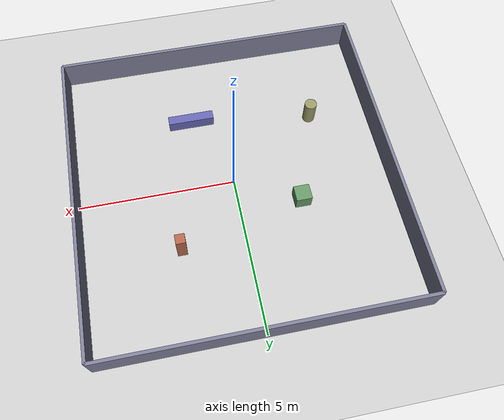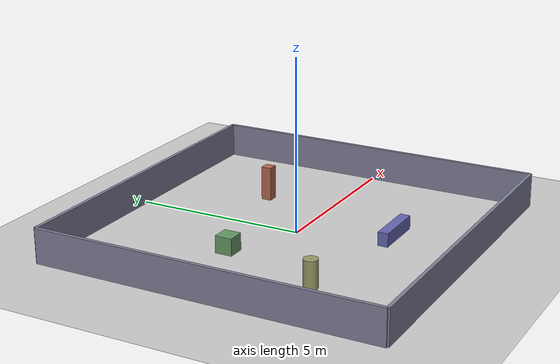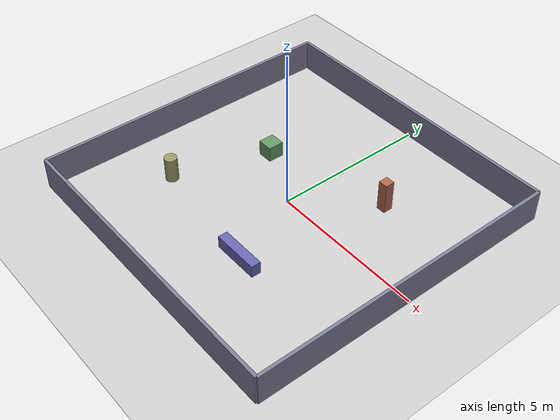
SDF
<?xml version="1.0" ?>
<sdf version="1.10">
  <world name="havoc_sim">
    <physics name="1ms" type="ignored">
      <max_step_size>0.001</max_step_size>
      <real_time_factor>1.0</real_time_factor>
    </physics>

    <plugin filename="gz-sim-physics-system" name="gz::sim::systems::Physics"/>
    <plugin filename="gz-sim-user-commands-system" name="gz::sim::systems::UserCommands"/>
    <plugin filename="gz-sim-scene-broadcaster-system" name="gz::sim::systems::SceneBroadcaster"/>
    <plugin filename="gz-sim-contact-system" name="gz::sim::systems::Contact"/>

    <!-- Sensor systems - the missing piece from empty.sdf. -->
    <plugin filename="gz-sim-sensors-system" name="gz::sim::systems::Sensors">
      <render_engine>ogre2</render_engine>
    </plugin>
    <plugin filename="gz-sim-imu-system" name="gz::sim::systems::Imu"/>

    <light type="directional" name="sun">
      <cast_shadows>true</cast_shadows>
      <pose>0 0 10 0 0 0</pose>
      <diffuse>0.8 0.8 0.8 1</diffuse>
      <specular>0.2 0.2 0.2 1</specular>
      <attenuation>
        <range>1000</range>
        <constant>0.9</constant>
        <linear>0.01</linear>
        <quadratic>0.001</quadratic>
      </attenuation>
      <direction>-0.5 0.1 -0.9</direction>
    </light>

    <model name="ground_plane">
      <static>true</static>
      <link name="link">
        <collision name="collision">
          <geometry>
            <plane>
              <normal>0 0 1</normal>
              <size>100 100</size>
            </plane>
          </geometry>
        </collision>
        <visual name="visual">
          <geometry>
            <plane>
              <normal>0 0 1</normal>
              <size>100 100</size>
            </plane>
          </geometry>
          <material>
            <ambient>0.7 0.7 0.7 1</ambient>
            <diffuse>0.8 0.8 0.8 1</diffuse>
            <specular>0.5 0.5 0.5 1</specular>
          </material>
        </visual>
      </link>
    </model>

    <model name="wall_north">
      <static>true</static>
      <pose>0 5 0.5 0 0 0</pose>
      <link name="link">
        <collision name="collision">
          <geometry><box><size>10 0.1 1</size></box></geometry>
        </collision>
        <visual name="visual">
          <geometry><box><size>10 0.1 1</size></box></geometry>
          <material>
            <ambient>0.4 0.4 0.5 1</ambient>
            <diffuse>0.5 0.5 0.6 1</diffuse>
          </material>
        </visual>
      </link>
    </model>
    <model name="wall_south">
      <static>true</static>
      <pose>0 -5 0.5 0 0 0</pose>
      <link name="link">
        <collision name="collision">
          <geometry><box><size>10 0.1 1</size></box></geometry>
        </collision>
        <visual name="visual">
          <geometry><box><size>10 0.1 1</size></box></geometry>
          <material>
            <ambient>0.4 0.4 0.5 1</ambient>
            <diffuse>0.5 0.5 0.6 1</diffuse>
          </material>
        </visual>
      </link>
    </model>
    <model name="wall_east">
      <static>true</static>
      <pose>5 0 0.5 0 0 0</pose>
      <link name="link">
        <collision name="collision">
          <geometry><box><size>0.1 10 1</size></box></geometry>
        </collision>
        <visual name="visual">
          <geometry><box><size>0.1 10 1</size></box></geometry>
          <material>
            <ambient>0.4 0.4 0.5 1</ambient>
            <diffuse>0.5 0.5 0.6 1</diffuse>
          </material>
        </visual>
      </link>
    </model>
    <model name="wall_west">
      <static>true</static>
      <pose>-5 0 0.5 0 0 0</pose>
      <link name="link">
        <collision name="collision">
          <geometry><box><size>0.1 10 1</size></box></geometry>
        </collision>
        <visual name="visual">
          <geometry><box><size>0.1 10 1</size></box></geometry>
          <material>
            <ambient>0.4 0.4 0.5 1</ambient>
            <diffuse>0.5 0.5 0.6 1</diffuse>
          </material>
        </visual>
      </link>
    </model>

    <model name="pillar_a">
      <static>true</static>
      <pose>2.0 2.0 0.5 0 0 0</pose>
      <link name="link">
        <collision name="collision">
          <geometry><box><size>0.3 0.3 1.0</size></box></geometry>
        </collision>
        <visual name="visual">
          <geometry><box><size>0.3 0.3 1.0</size></box></geometry>
          <material>
            <ambient>0.6 0.3 0.2 1</ambient>
            <diffuse>0.7 0.4 0.3 1</diffuse>
          </material>
        </visual>
      </link>
    </model>
    <model name="box_a">
      <static>true</static>
      <pose>-2.0 1.0 0.25 0 0 0</pose>
      <link name="link">
        <collision name="collision">
          <geometry><box><size>0.5 0.5 0.5</size></box></geometry>
        </collision>
        <visual name="visual">
          <geometry><box><size>0.5 0.5 0.5</size></box></geometry>
          <material>
            <ambient>0.3 0.5 0.3 1</ambient>
            <diffuse>0.4 0.6 0.4 1</diffuse>
          </material>
        </visual>
      </link>
    </model>
    <model name="long_box">
      <static>true</static>
      <pose>1.0 -2.5 0.2 0 0 0</pose>
      <link name="link">
        <collision name="collision">
          <geometry><box><size>1.5 0.3 0.4</size></box></geometry>
        </collision>
        <visual name="visual">
          <geometry><box><size>1.5 0.3 0.4</size></box></geometry>
          <material>
            <ambient>0.3 0.3 0.6 1</ambient>
            <diffuse>0.4 0.4 0.7 1</diffuse>
          </material>
        </visual>
      </link>
    </model>
    <model name="pillar_b">
      <static>true</static>
      <pose>-3.0 -2.0 0.4 0 0 0</pose>
      <link name="link">
        <collision name="collision">
          <geometry><cylinder><radius>0.2</radius><length>0.8</length></cylinder></geometry>
        </collision>
        <visual name="visual">
          <geometry><cylinder><radius>0.2</radius><length>0.8</length></cylinder></geometry>
          <material>
            <ambient>0.5 0.5 0.3 1</ambient>
            <diffuse>0.6 0.6 0.4 1</diffuse>
          </material>
        </visual>
      </link>
    </model>
  </world>
</sdf>
